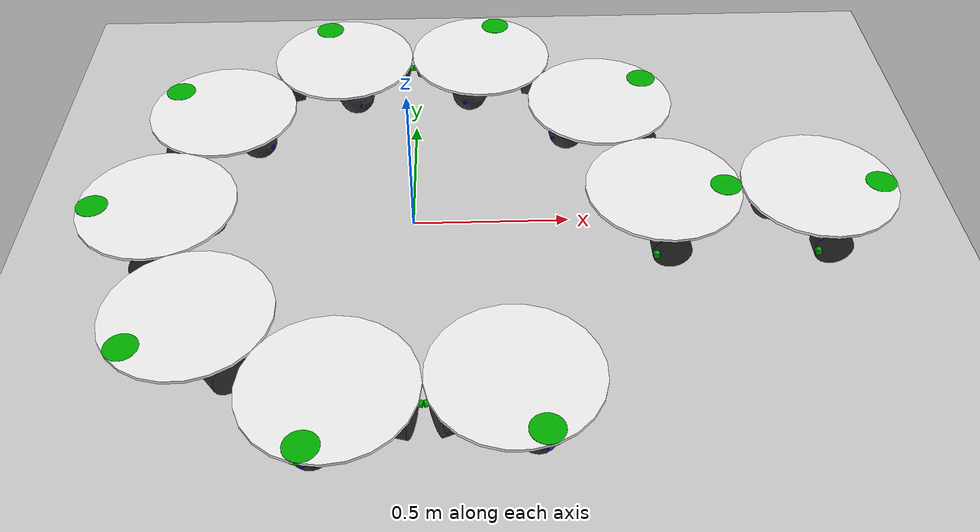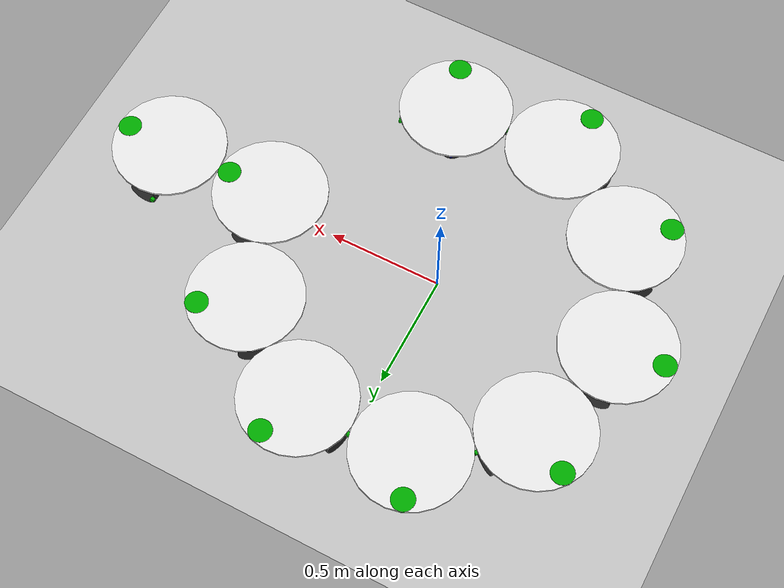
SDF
<sdf version="1.6">
 <world name="default">
  <include><uri>model://ground_plane</uri></include>
  <include><uri>model://sun</uri></include>
  <include><name>m_4wrobot1</name><pose>0.8 0.0 0.005 0 0 0</pose><uri>model://m_4wrobot</uri></include>
  <include>
   <name>m_4wrobot2</name>
   <pose>0.64375 0.4749588797990832 0.005 0 0 0.6356474078557615</pose>
   <uri>model://m_4wrobot</uri>
  </include>
  <include>
   <name>m_4wrobot3</name>
   <pose>0.2360351562500001 0.7643869471766496 0.005 0 0 1.271294815711523</pose>
   <uri>model://m_4wrobot</uri>
  </include>
  <include>
   <name>m_4wrobot4</name>
   <pose>-0.26388092041015615 0.7552263633133373 0.005 0 0 1.9069422235672844</pose>
   <uri>model://m_4wrobot</uri>
  </include>
  <include>
   <name>m_4wrobot5</name>
   <pose>-0.6607185125350952 0.4510554812807526 0.005 0 0 2.542589631423046</pose>
   <uri>model://m_4wrobot</uri>
  </include>
  <include>
   <name>m_4wrobot6</name>
   <pose>-0.7994629357010127 -0.029308948127125846 0.005 0 0 3.178237039278807</pose>
   <uri>model://m_4wrobot</uri>
  </include>
  <include>
   <name>m_4wrobot7</name>
   <pose>-0.6259171496087224 -0.4982245696728458 0.005 0 0 3.8138844471345683</pose>
   <uri>model://m_4wrobot</uri>
  </include>
  <include>
   <name>m_4wrobot8</name>
   <pose>-0.20787247695052505 -0.7725212186901105 0.005 0 0 4.4495318549903295</pose>
   <uri>model://m_4wrobot</uri>
  </include>
  <include>
   <name>m_4wrobot9</name>
   <pose>0.29137238201647103 -0.745051766656551 0.005 0 0 5.085179262846091</pose>
   <uri>model://m_4wrobot</uri>
  </include>
  <include><name>m_4wrobot10</name><pose>1.3 0.0 0.005 0 0 0</pose><uri>model://m_4wrobot</uri></include>
  <plugin name="wp_swarm1" filename="libwp_swarm1.so"/>
 </world>
</sdf>

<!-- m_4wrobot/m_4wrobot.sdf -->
<!--Prefer Using this version.-->

<!--scale -->
<!--chassis length -->
<!--chassis radius -->
<!--wheel radius -->
<!--wheel length -->
<!--friction coefficient on wheels range from 0 to 1 -->
<!--slip coefficient range from 0 to 1 -->
<!--chassis mass-->
<!--mass of revolute wheels-->
<!--mass of caster wheels-->

<?xml version='1.0'?>
<sdf version='1.6'>
  <model name='m_4wrobot'>
	  <static>false</static>
	  <pose>0 0 0 0 0 0</pose>
	  <link name = 'chassis'>
		  <pose>0 0 0.126 0 0 0</pose>
		  <inertial>
			<mass>1</mass>
			<inertia>
				<ixx>0.015633333333333332</ixx>
				<ixy>0</ixy>
				<ixz>0</ixz>
				<iyy>0.015633333333333332</iyy>
				<iyz>0</iyz>
				<izz>0.015633333333333332</izz>
			</inertia>
		 </inertial>
		  <visual name='visual'>
			  <geometry>
				  <cylinder>
					  <radius>0.25</radius>
					  <length>0.01</length>
				  </cylinder>
			  </geometry>
			  <material>
				<ambient>0.95 0.95 0.95 01</ambient>
				<diffuse>0.95 0.95 0.95 01</diffuse>
				<specular>0 0 0 0</specular>
				<emissive>0 0 0 0</emissive>
			  </material>
		  </visual>
		  <visual name = 'visual1'>
			  <pose>0.2 0 0 0 0 0</pose>
			  <geometry>
				  <cylinder>
					  <radius>0.05</radius>
					  <length>0.0121</length>
				  </cylinder>
			  </geometry>
			  <material>
				<ambient>0 0.7 0 01</ambient>
				<diffuse>0 0.7 0 01</diffuse>
				<specular>0 0 0 0</specular>
				<emissive>0 0 0 0</emissive>
			  </material>
		  </visual>
		  <collision name='collision'>
			  <geometry>
				  <cylinder>
					  <radius>0.25</radius>
					  <length>0.0605</length><!--2*wr-->
				  </cylinder>
			  </geometry>
		  </collision>
		  <sensor name='chassis_contact' type='contact'>
			  <contact>
				  <collision>collision</collision>
			  </contact>
			  <update_rate>1</update_rate>
			  <always_on>true</always_on>
			  <visualize>false</visualize>
		  </sensor>
	  </link>
	  <link name = 'wheelL'>
		  <pose>0 0.2 0.0605 0 1.5705 1.5705</pose>
	    <inertial>
			<mass>1</mass>
			<inertia>
				<ixx>0.0012200833333333332</ixx>
				<ixy>0</ixy>
				<ixz>0</ixz>
				<iyy>0.0012200833333333332</iyy>
				<iyz>0</iyz>
				<izz>0.0012200833333333332</izz>
			</inertia>
		 </inertial>
		  <visual name = 'visual'>
			  <geometry>
				  <cylinder>
					  <radius>0.0605</radius>
					  <length>0.0605</length>
				  </cylinder>
			  </geometry>
			  <material>
				<ambient>0.2 0.2 0.2 01</ambient>
				<diffuse>0.2 0.2 0.2 01</diffuse>
				<specular>0 0 0 0</specular>
				<emissive>0 0 0 0</emissive>
			  </material>
		  </visual>
		  <visual name = 'visual1'>
			  <pose>0 0.05 0.03025 0 0 0</pose>
			  <geometry>
				  <cylinder>
					  <radius>0.010083333333333333</radius>
					  <length>0.03025</length>
				  </cylinder>
			  </geometry>
			  <material>
				<ambient>0 0.7 0 01</ambient>
				<diffuse>0 0.7 0 01</diffuse>
				<specular>0 0 0 0</specular>
				<emissive>0 0 0 0</emissive>
			  </material>
		  </visual>

		  <collision name = 'collision'>
			  <geometry>
				  <cylinder>
					  <radius>0.0605</radius>
					  <length>0.0605</length>
				  </cylinder>
			  </geometry>
		  </collision>
      </link>

      <joint type='revolute' name='L_joint'>
		  <pose>0 0 -0.03025 0 0 0</pose>
		  <child>wheelL</child>
		  <parent>chassis</parent>
		  <axis>
			  <xyz>0 0 1</xyz>
		  </axis>
		  <physics>
			  <ode>
				  <max_force>0</max_force>
			  </ode>
		  </physics>
      </joint>
      <link name = 'wheelR'>
		  <pose>0 -0.2 0.0605 0 1.5705 1.5705</pose>
		  <inertial>
		    <mass>1</mass>
			<inertia>
				<ixx>0.0012200833333333332</ixx>
				<ixy>0</ixy>
				<ixz>0</ixz>
				<iyy>0.0012200833333333332</iyy>
				<iyz>0</iyz>
				<izz>0.0012200833333333332</izz>
			</inertia>
		 </inertial>
		  <visual name = 'visual'>
			  <geometry>
				  <cylinder>
					  <radius>0.0605</radius>
					  <length>0.0605</length>
				  </cylinder>
			  </geometry>
			  <material>
				<ambient>0.2 0.2 0.2 01</ambient>
				<diffuse>0.2 0.2 0.2 01</diffuse>
				<specular>0 0 0 0</specular>
				<emissive>0 0 0 0</emissive>
			  </material>
		  </visual>
		  <visual name = 'visual1'>
			  <pose>0 0.05 -0.03025 0 0 0</pose>
			  <geometry>
				  <cylinder>
					  <radius>0.010083333333333333</radius>
					  <length>0.03025</length>
				  </cylinder>
			  </geometry>
			  <material>
				<ambient>0 0.7 0 01</ambient>
				<diffuse>0 0.7 0 01</diffuse>
				<specular>0 0 0 0</specular>
				<emissive>0 0 0 0</emissive>
			  </material>
		  </visual>
		  <collision name = 'collision'>
			  <geometry>
				  <cylinder>
					  <radius>0.0605</radius>
					  <length>0.0605</length>
				  </cylinder>
			  </geometry>
		  </collision>
      </link>
      <joint type='revolute' name='R_joint'>
		  <pose>0 0 0.03025 0 0 0</pose>
		  <child>wheelR</child>
		  <parent>chassis</parent>
		  <axis>
			  <xyz>0 0 1</xyz>
		  </axis>
		  <physics>
			  <ode>
				  <max_force>0</max_force>
			  </ode>
		  </physics>
      </joint>
      <link name = 'wheelB'>
		  <pose>-0.15 0 0.0605 0 1.5705 1.5705</pose>
		  <inertial>
			<mass>0.1</mass>
			<inertia>
				<ixx>0.00014641000000000003</ixx>
				<ixy>0</ixy>
				<ixz>0</ixz>
				<iyy>0.00014641000000000003</iyy>
				<iyz>0</iyz>
				<izz>0.00014641000000000003</izz>
			</inertia>
		 </inertial>
		 <visual name = 'visual1'>
			  <pose>0.0605 0 0 0 0 0</pose>
			  <geometry>
				  <sphere>
					  <radius>0.00605</radius>
				  </sphere>
			  </geometry>
			  <material>
				<ambient>0 0 0.7 01</ambient>
				<diffuse>0 0 0.7 01</diffuse>
				<specular>0 0 0 0</specular>
				<emissive>0 0 0 0</emissive>
			  </material>
		  </visual>
		  <visual name = 'visual2'>
			  <pose>0 0.0605 0 0 0 0</pose>
			  <geometry>
				  <sphere>
					  <radius>0.00605</radius>
				  </sphere>
			  </geometry>
			  <material>
				<ambient>0 0 0.7 01</ambient>
				<diffuse>0 0 0.7 01</diffuse>
				<specular>0 0 0 0</specular>
				<emissive>0 0 0 0</emissive>
			  </material>
		  </visual>
		  <visual name = 'visual3'>
			  <pose>0 0 0.0605 0 0 0</pose>
			  <geometry>
				  <sphere>
					  <radius>0.00605</radius>
				  </sphere>
			  </geometry>
			  <material>
				<ambient>0 0 0.7 01</ambient>
				<diffuse>0 0 0.7 01</diffuse>
				<specular>0 0 0 0</specular>
				<emissive>0 0 0 0</emissive>
			  </material>
		  </visual>
		  <visual name = 'visual4'>
			  <pose>-0.0605 0 0 0 0 0</pose>
			  <geometry>
				  <sphere>
					  <radius>-0.00605</radius>
				  </sphere>
			  </geometry>
			  <material>
				<ambient>0 0 0.7 01</ambient>
				<diffuse>0 0 0.7 01</diffuse>
				<specular>0 0 0 0</specular>
				<emissive>0 0 0 0</emissive>
			  </material>
		  </visual>
		  <visual name = 'visual5'>
			  <pose>0 -0.0605 0 0 0 0</pose>
			  <geometry>
				  <sphere>
					  <radius>0.00605</radius>
				  </sphere>
			  </geometry>
			  <material>
				<ambient>0 0 0.7 01</ambient>
				<diffuse>0 0 0.7 01</diffuse>
				<specular>0 0 0 0</specular>
				<emissive>0 0 0 0</emissive>
			  </material>
		  </visual>
		  <visual name = 'visual6'>
			  <pose>0 0 -0.0605 0 0 0</pose>
			  <geometry>
				  <sphere>
					  <radius>0.00605</radius>
				  </sphere>
			  </geometry>
			  <material>
				<ambient>0 0 0.7 01</ambient>
				<diffuse>0 0 0.7 01</diffuse>
				<specular>0 0 0 0</specular>
				<emissive>0 0 0 0</emissive>
			  </material>
		  </visual>
		  <visual name = 'visual'>
			  <geometry>
				  <sphere>
					  <radius>0.0605</radius>
				  </sphere>
			  </geometry>
			  <material>
				<ambient>0.2 0.2 0.2 01</ambient>
				<diffuse>0.2 0.2 0.2 01</diffuse>
				<specular>0 0 0 0</specular>
				<emissive>0 0 0 0</emissive>
			  </material>
		  </visual>
		  <collision name = 'collision'>
			  <geometry>
				  <sphere>
					  <radius>0.0605</radius>
				  </sphere>
			  </geometry>
		  </collision>
      </link>
      <joint type='ball' name='B_joint'>
		  <child>wheelB</child>
		  <parent>chassis</parent>
      </joint>

      <link name = 'wheelF'>
		  <pose>0.15 0 0.0605 0 1.5705 1.5705</pose>
		  <inertial>
			<mass>0.1</mass>
			<inertia>
				<ixx>0.00014641000000000003</ixx>
				<ixy>0</ixy>
				<ixz>0</ixz>
				<iyy>0.00014641000000000003</iyy>
				<iyz>0</iyz>
				<izz>0.00014641000000000003</izz>
			</inertia>
		 </inertial>
		 <visual name = 'visual1'>
			  <pose>0.0605 0 0 0 0 0</pose>
			  <geometry>
				  <sphere>
					  <radius>0.00605</radius>
				  </sphere>
			  </geometry>
			  <material>
				<ambient>0 0 0.7 01</ambient>
				<diffuse>0 0 0.7 01</diffuse>
				<specular>0 0 0 0</specular>
				<emissive>0 0 0 0</emissive>
			  </material>
		  </visual>
		  <visual name = 'visual2'>
			  <pose>0 0.0605 0 0 0 0</pose>
			  <geometry>
				  <sphere>
					  <radius>0.00605</radius>
				  </sphere>
			  </geometry>
			  <material>
				<ambient>0 0 0.7 01</ambient>
				<diffuse>0 0 0.7 01</diffuse>
				<specular>0 0 0 0</specular>
				<emissive>0 0 0 0</emissive>
			  </material>
		  </visual>
		  <visual name = 'visual3'>
			  <pose>0 0 0.0605 0 0 0</pose>
			  <geometry>
				  <sphere>
					  <radius>0.00605</radius>
				  </sphere>
			  </geometry>
			  <material>
				<ambient>0 0 0.7 01</ambient>
				<diffuse>0 0 0.7 01</diffuse>
				<specular>0 0 0 0</specular>
				<emissive>0 0 0 0</emissive>
			  </material>
		  </visual>
		  <visual name = 'visual4'>
			  <pose>-0.0605 0 0 0 0 0</pose>
			  <geometry>
				  <sphere>
					  <radius>-0.00605</radius>
				  </sphere>
			  </geometry>
			  <material>
				<ambient>0 0 0.7 01</ambient>
				<diffuse>0 0 0.7 01</diffuse>
				<specular>0 0 0 0</specular>
				<emissive>0 0 0 0</emissive>
			  </material>
		  </visual>
		  <visual name = 'visual5'>
			  <pose>0 -0.0605 0 0 0 0</pose>
			  <geometry>
				  <sphere>
					  <radius>0.00605</radius>
				  </sphere>
			  </geometry>
			  <material>
				<ambient>0 0 0.7 01</ambient>
				<diffuse>0 0 0.7 01</diffuse>
				<specular>0 0 0 0</specular>
				<emissive>0 0 0 0</emissive>
			  </material>
		  </visual>
		  <visual name = 'visual6'>
			  <pose>0 0 -0.0605 0 0 0</pose>
			  <geometry>
				  <sphere>
					  <radius>0.00605</radius>
				  </sphere>
			  </geometry>
			  <material>
				<ambient>0 0 0.7 01</ambient>
				<diffuse>0 0 0.7 01</diffuse>
				<specular>0 0 0 0</specular>
				<emissive>0 0 0 0</emissive>
			  </material>
		  </visual>
		  <visual name = 'visual'>
			  <geometry>
				  <sphere>
					  <radius>0.0605</radius>
				  </sphere>
			  </geometry>
			  <material>
				<ambient>0.2 0.2 0.2 01</ambient>
				<diffuse>0.2 0.2 0.2 01</diffuse>
				<specular>0 0 0 0</specular>
				<emissive>0 0 0 0</emissive>
			  </material>
		  </visual>
		  <collision name = 'collision'>
			  <geometry>
				  <sphere>
					  <radius>0.0605</radius>
				  </sphere>
			  </geometry>
		  </collision>
      </link>

      <joint type='ball' name='F_joint'>
		  <child>wheelF</child>
		  <parent>chassis</parent>
      </joint>

	 <plugin name='libmp_swarm1' filename='libmp_swarm1.so'/>
  </model>
 </sdf>
